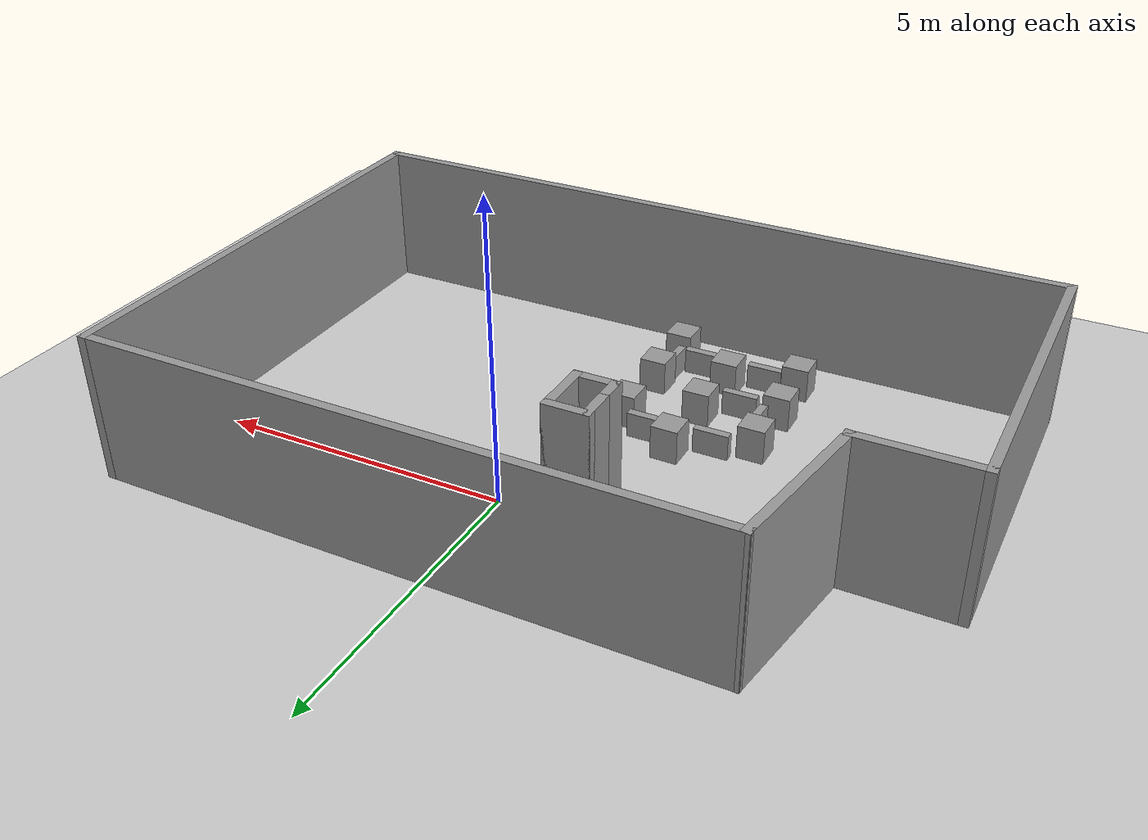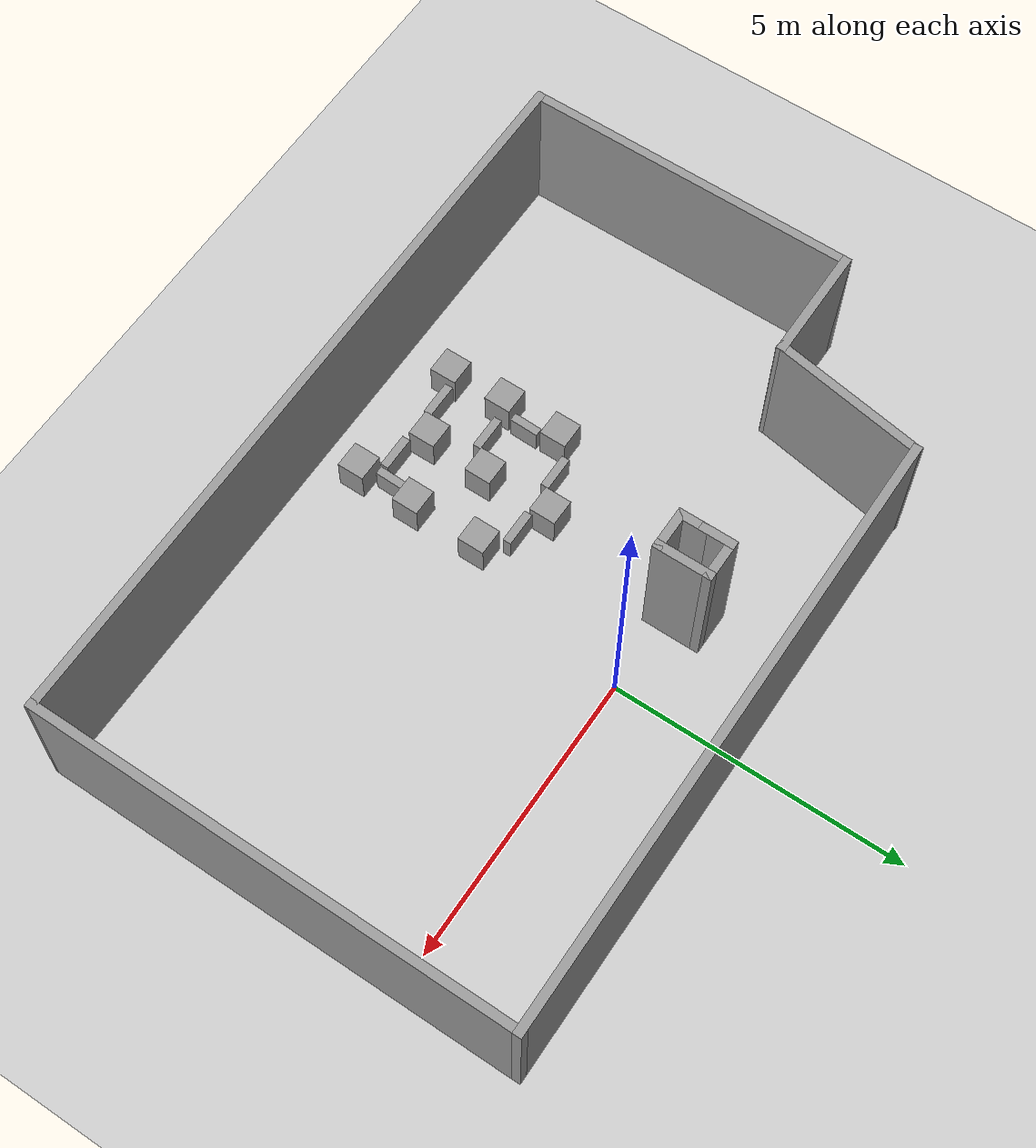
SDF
<sdf version="1.7">
 <world name="lab211_with_boxes_t7_1">
  <light name="sun" type="directional">
   <pose>0 0 10 0 -0 0</pose>
   <diffuse>0.8 0.8 0.8 1</diffuse>
   <specular>0.2 0.2 0.2 1</specular>
   <attenuation>
    <range>1000</range>
    <constant>0.9</constant>
    <linear>0.01</linear>
    <quadratic>0.001</quadratic>
   </attenuation>
   <direction>-0.5 0.1 -0.9</direction>
   <spot><inner_angle>0</inner_angle><outer_angle>0</outer_angle><falloff>0</falloff></spot>
  </light>
  <model name="ground_plane">
   <static>1</static>
   <link name="link">
    <collision name="collision">
     <geometry><plane><normal>0 0 1</normal><size>100 100</size></plane></geometry>
     <surface>
      <contact><collide_bitmask>65535</collide_bitmask></contact>
      <friction><ode><mu>100</mu><mu2>50</mu2></ode></friction>
     </surface>
    </collision>
    <visual name="visual">
     <cast_shadows>0</cast_shadows>
     <geometry><plane><normal>0 0 1</normal><size>100 100</size></plane></geometry>
     <material>
      <script><uri>file://media/materials/scripts/gazebo.material</uri><name>Gazebo/Grey</name></script>
      <ambient>0.9 0.9 0.9 1</ambient>
      <diffuse>0.9 0.9 0.9 1</diffuse>
      <specular>0.9 0.9 0.9 1</specular>
      <emissive>0.4 0.4 0.4 1</emissive>
     </material>
    </visual>
   </link>
  </model>
  <gravity>0 0 -9.8</gravity>
  <magnetic_field>6e-06 2.3e-05 -4.2e-05</magnetic_field>
  <atmosphere type="adiabatic"/>
  <physics type="ode">
   <max_step_size>0.001</max_step_size>
   <real_time_factor>1</real_time_factor>
   <real_time_update_rate>1000</real_time_update_rate>
  </physics>
  <scene><ambient>0.4 0.4 0.4 1</ambient><background>0.7 0.7 0.7 1</background><shadows>1</shadows></scene>
  <audio><device>default</device></audio>
  <spherical_coordinates>
   <surface_model>EARTH_WGS84</surface_model>
   <latitude_deg>0</latitude_deg>
   <longitude_deg>0</longitude_deg>
   <elevation>0</elevation>
   <heading_deg>0</heading_deg>
  </spherical_coordinates>
  <model name="lab211_1">
   <pose>-0.641429 -1.97187 0 0 -0 0</pose>
   <link name="Wall_12">
    <collision name="Wall_12_Collision">
     <geometry><box><size>8.25 0.15 2.5</size></box></geometry>
     <pose>0 0 1.25 0 -0 0</pose>
    </collision>
    <visual name="Wall_12_Visual">
     <pose>0 0 1.25 0 -0 0</pose>
     <geometry><box><size>8.25 0.15 2.5</size></box></geometry>
     <material>
      <script><uri>file://media/materials/scripts/gazebo.material</uri><name>Gazebo/Grey</name></script>
      <ambient>0.9 0.9 0.9 1</ambient>
      <diffuse>0.9 0.9 0.9 1</diffuse>
      <specular>0.9 0.9 0.9 1</specular>
      <emissive>0.4 0.4 0.4 1</emissive>
      <ambient>0.9 0.9 0.9 1</ambient>
      <diffuse>0.9 0.9 0.9 1</diffuse>
      <specular>0.9 0.9 0.9 1</specular>
      <emissive>0.4 0.4 0.4 1</emissive>
     </material>
     <meta><layer>0</layer></meta>
    </visual>
    <pose>6.31146 3.1e-05 0 0 -0 1.5708</pose>
   </link>
   <link name="Wall_13">
    <collision name="Wall_13_Collision">
     <geometry><box><size>10.5 0.15 2.5</size></box></geometry>
     <pose>0 0 1.25 0 -0 0</pose>
    </collision>
    <visual name="Wall_13_Visual">
     <pose>0 0 1.25 0 -0 0</pose>
     <geometry><box><size>10.5 0.15 2.5</size></box></geometry>
     <material>
      <script><uri>file://media/materials/scripts/gazebo.material</uri><name>Gazebo/Grey</name></script>
      <ambient>0.9 0.9 0.9 1</ambient>
      <diffuse>0.9 0.9 0.9 1</diffuse>
      <specular>0.9 0.9 0.9 1</specular>
      <emissive>0.4 0.4 0.4 1</emissive>
     </material>
     <meta><layer>0</layer></meta>
    </visual>
    <pose>1.13646 4.05003 0 0 -0 3.14159</pose>
   </link>
   <link name="Wall_16">
    <collision name="Wall_16_Collision">
     <geometry><box><size>5.75 0.15 2.5</size></box></geometry>
     <pose>0 0 1.25 0 -0 0</pose>
    </collision>
    <visual name="Wall_16_Visual">
     <pose>0 0 1.25 0 -0 0</pose>
     <geometry><box><size>5.75 0.15 2.5</size></box></geometry>
     <material>
      <script><uri>file://media/materials/scripts/gazebo.material</uri><name>Gazebo/Grey</name></script>
      <ambient>0.9 0.9 0.9 1</ambient>
      <diffuse>0.9 0.9 0.9 1</diffuse>
      <specular>0.9 0.9 0.9 1</specular>
      <emissive>0.4 0.4 0.4 1</emissive>
     </material>
     <meta><layer>0</layer></meta>
    </visual>
    <pose>-6.31147 -1.26138 0 0 -0 -1.5708</pose>
   </link>
   <link name="Wall_18">
    <collision name="Wall_18_Collision">
     <geometry><box><size>12.7729 0.15 2.5</size></box></geometry>
     <pose>0 0 1.25 0 -0 0</pose>
    </collision>
    <visual name="Wall_18_Visual">
     <pose>0 0 1.25 0 -0 0</pose>
     <geometry><box><size>12.7729 0.15 2.5</size></box></geometry>
     <material>
      <script><uri>file://media/materials/scripts/gazebo.material</uri><name>Gazebo/Grey</name></script>
      <ambient>0.9 0.9 0.9 1</ambient>
      <diffuse>0.9 0.9 0.9 1</diffuse>
      <specular>0.9 0.9 0.9 1</specular>
      <emissive>0.4 0.4 0.4 1</emissive>
     </material>
     <meta><layer>0</layer></meta>
    </visual>
    <pose>-0 -4.05567 0 0 -0 0.000904</pose>
   </link>
   <link name="Wall_20">
    <collision name="Wall_20_Collision">
     <geometry><box><size>2 0.15 2.5</size></box></geometry>
     <pose>0 0 1.25 0 -0 0</pose>
    </collision>
    <visual name="Wall_20_Visual">
     <pose>0 0 1.25 0 -0 0</pose>
     <geometry><box><size>2 0.15 2.5</size></box></geometry>
     <material>
      <script><uri>file://media/materials/scripts/gazebo.material</uri><name>Gazebo/Grey</name></script>
      <ambient>0.9 0.9 0.9 1</ambient>
      <diffuse>0.9 0.9 0.9 1</diffuse>
      <specular>0.9 0.9 0.9 1</specular>
      <emissive>0.4 0.4 0.4 1</emissive>
     </material>
     <meta><layer>0</layer></meta>
    </visual>
    <pose>-5.38647 1.53862 0 0 -0 0</pose>
   </link>
   <link name="Wall_21">
    <collision name="Wall_21_Collision">
     <geometry><box><size>2.69677 0.15 2.5</size></box></geometry>
     <pose>0 0 1.25 0 -0 0</pose>
    </collision>
    <visual name="Wall_21_Visual">
     <pose>0 0 1.25 0 -0 0</pose>
     <geometry><box><size>2.69677 0.15 2.5</size></box></geometry>
     <material>
      <script><uri>file://media/materials/scripts/gazebo.material</uri><name>Gazebo/Grey</name></script>
      <ambient>0.9 0.9 0.9 1</ambient>
      <diffuse>0.9 0.9 0.9 1</diffuse>
      <specular>0.9 0.9 0.9 1</specular>
      <emissive>0.4 0.4 0.4 1</emissive>
     </material>
     <meta><layer>0</layer></meta>
    </visual>
    <pose>-4.25 2.79433 0 0 -0 1.40396</pose>
   </link>
   <static>1</static>
  </model>
  <model name="lab211_piller">
   <pose>-1.62497 0.232964 0 0 -0 0</pose>
   <link name="Wall_28">
    <collision name="Wall_28_Collision">
     <geometry><box><size>0.5532 0.15 2.5</size></box></geometry>
     <pose>0 0 1.25 0 -0 0</pose>
    </collision>
    <visual name="Wall_28_Visual">
     <pose>0 0 1.25 0 -0 0</pose>
     <geometry><box><size>0.5532 0.15 2.5</size></box></geometry>
     <material>
      <script><uri>file://media/materials/scripts/gazebo.material</uri><name>Gazebo/Grey</name></script>
      <ambient>0.9 0.9 0.9 1</ambient>
      <diffuse>0.9 0.9 0.9 1</diffuse>
      <specular>0.9 0.9 0.9 1</specular>
      <emissive>0.4 0.4 0.4 1</emissive>
     </material>
     <meta><layer>0</layer></meta>
    </visual>
    <pose>-0.227876 -0.2234 0 0 -0 -1.5708</pose>
   </link>
   <link name="Wall_29">
    <collision name="Wall_29_Collision">
     <geometry><box><size>0.75 0.15 2.5</size></box></geometry>
     <pose>0 0 1.25 0 -0 0</pose>
    </collision>
    <visual name="Wall_29_Visual">
     <pose>0 0 1.25 0 -0 0</pose>
     <geometry><box><size>0.75 0.15 2.5</size></box></geometry>
     <material>
      <script><uri>file://media/materials/scripts/gazebo.material</uri><name>Gazebo/Grey</name></script>
      <ambient>0.9 0.9 0.9 1</ambient>
      <diffuse>0.9 0.9 0.9 1</diffuse>
      <specular>0.9 0.9 0.9 1</specular>
      <emissive>0.4 0.4 0.4 1</emissive>
     </material>
     <meta><layer>0</layer></meta>
    </visual>
    <pose>0.072124 -0.425 0 0 -0 0</pose>
   </link>
   <link name="Wall_30">
    <collision name="Wall_30_Collision">
     <geometry><box><size>1 0.15 2.5</size></box></geometry>
     <pose>0 0 1.25 0 -0 0</pose>
    </collision>
    <visual name="Wall_30_Visual">
     <pose>0 0 1.25 0 -0 0</pose>
     <geometry><box><size>1 0.15 2.5</size></box></geometry>
     <material>
      <script><uri>file://media/materials/scripts/gazebo.material</uri><name>Gazebo/Grey</name></script>
      <ambient>0.9 0.9 0.9 1</ambient>
      <diffuse>0.9 0.9 0.9 1</diffuse>
      <specular>0.9 0.9 0.9 1</specular>
      <emissive>0.4 0.4 0.4 1</emissive>
     </material>
     <meta><layer>0</layer></meta>
    </visual>
    <pose>0.372124 -0 0 0 -0 1.5708</pose>
   </link>
   <link name="Wall_31">
    <collision name="Wall_31_Collision">
     <geometry><box><size>0.75 0.15 2.5</size></box></geometry>
     <pose>0 0 1.25 0 -0 0</pose>
    </collision>
    <visual name="Wall_31_Visual">
     <pose>0 0 1.25 0 -0 0</pose>
     <geometry><box><size>0.75 0.15 2.5</size></box></geometry>
     <material>
      <script><uri>file://media/materials/scripts/gazebo.material</uri><name>Gazebo/Grey</name></script>
      <ambient>0.9 0.9 0.9 1</ambient>
      <diffuse>0.9 0.9 0.9 1</diffuse>
      <specular>0.9 0.9 0.9 1</specular>
      <emissive>0.4 0.4 0.4 1</emissive>
     </material>
     <meta><layer>0</layer></meta>
    </visual>
    <pose>0.072124 0.425 0 0 -0 3.14159</pose>
   </link>
   <link name="Wall_32">
    <collision name="Wall_32_Collision">
     <geometry><box><size>0.5968 0.15 2.5</size></box></geometry>
     <pose>0 0 1.25 0 -0 0</pose>
    </collision>
    <visual name="Wall_32_Visual">
     <pose>0 0 1.25 0 -0 0</pose>
     <geometry><box><size>0.5968 0.15 2.5</size></box></geometry>
     <material>
      <script><uri>file://media/materials/scripts/gazebo.material</uri><name>Gazebo/Grey</name></script>
      <ambient>0.9 0.9 0.9 1</ambient>
      <diffuse>0.9 0.9 0.9 1</diffuse>
      <specular>0.9 0.9 0.9 1</specular>
      <emissive>0.4 0.4 0.4 1</emissive>
     </material>
     <meta><layer>0</layer></meta>
    </visual>
    <pose>-0.227876 0.2016 0 0 -0 -1.5708</pose>
   </link>
   <static>1</static>
  </model>
  <model name="unit_box_clone">
   <pose>-3.02205 -4.03785 0.294122 0 0 -0.002878</pose>
   <link name="link">
    <inertial>
     <mass>1</mass>
     <inertia>
      <ixx>0.166667</ixx>
      <ixy>0</ixy>
      <ixz>0</ixz>
      <iyy>0.166667</iyy>
      <iyz>0</iyz>
      <izz>0.166667</izz>
     </inertia>
    </inertial>
    <collision name="collision"><geometry><box><size>0.460991 0.46303 0.588244</size></box></geometry></collision>
    <visual name="visual">
     <geometry><box><size>0.460991 0.46303 0.588244</size></box></geometry>
     <material>
      <script><name>Gazebo/Grey</name><uri>file://media/materials/scripts/gazebo.material</uri></script>
     </material>
    </visual>
   </link>
  </model>
  <model name="unit_box_clone_0">
   <pose>-2.98154 -5.04818 0.294122 0 -0 0.005357</pose>
   <link name="link">
    <inertial>
     <mass>1</mass>
     <inertia>
      <ixx>0.166667</ixx>
      <ixy>0</ixy>
      <ixz>0</ixz>
      <iyy>0.166667</iyy>
      <iyz>0</iyz>
      <izz>0.166667</izz>
     </inertia>
    </inertial>
    <collision name="collision"><geometry><box><size>0.460991 0.46303 0.588244</size></box></geometry></collision>
    <visual name="visual">
     <geometry><box><size>0.460991 0.46303 0.588244</size></box></geometry>
     <material>
      <script><name>Gazebo/Grey</name><uri>file://media/materials/scripts/gazebo.material</uri></script>
     </material>
    </visual>
   </link>
  </model>
  <model name="unit_box_clone_1">
   <pose>-1.7936 -3.57402 0.294122 0 -0 4e-06</pose>
   <link name="link">
    <inertial>
     <mass>1</mass>
     <inertia>
      <ixx>0.166667</ixx>
      <ixy>0</ixy>
      <ixz>0</ixz>
      <iyy>0.166667</iyy>
      <iyz>0</iyz>
      <izz>0.166667</izz>
     </inertia>
    </inertial>
    <collision name="collision"><geometry><box><size>0.460991 0.46303 0.588244</size></box></geometry></collision>
    <visual name="visual">
     <geometry><box><size>0.460991 0.46303 0.588244</size></box></geometry>
     <material>
      <script><name>Gazebo/Grey</name><uri>file://media/materials/scripts/gazebo.material</uri></script>
     </material>
    </visual>
   </link>
  </model>
  <model name="unit_box_clone_2">
   <pose>-1.84249 -4.66509 0.294122 0 -0 4e-06</pose>
   <link name="link">
    <inertial>
     <mass>1</mass>
     <inertia>
      <ixx>0.166667</ixx>
      <ixy>0</ixy>
      <ixz>0</ixz>
      <iyy>0.166667</iyy>
      <iyz>0</iyz>
      <izz>0.166667</izz>
     </inertia>
    </inertial>
    <collision name="collision"><geometry><box><size>0.460991 0.46303 0.588244</size></box></geometry></collision>
    <visual name="visual">
     <geometry><box><size>0.460991 0.46303 0.588244</size></box></geometry>
     <material>
      <script><name>Gazebo/Grey</name><uri>file://media/materials/scripts/gazebo.material</uri></script>
     </material>
    </visual>
   </link>
  </model>
  <model name="unit_box_clone_3">
   <pose>-1.77452 -2.35412 0.294122 0 -0 -0.007167</pose>
   <link name="link">
    <inertial>
     <mass>1</mass>
     <inertia>
      <ixx>0.166667</ixx>
      <ixy>0</ixy>
      <ixz>0</ixz>
      <iyy>0.166667</iyy>
      <iyz>0</iyz>
      <izz>0.166667</izz>
     </inertia>
    </inertial>
    <collision name="collision"><geometry><box><size>0.460991 0.46303 0.588244</size></box></geometry></collision>
    <visual name="visual">
     <geometry><box><size>0.460991 0.46303 0.588244</size></box></geometry>
     <material>
      <script><name>Gazebo/Grey</name><uri>file://media/materials/scripts/gazebo.material</uri></script>
     </material>
    </visual>
   </link>
  </model>
  <model name="unit_box_clone_4">
   <pose>-0.735079 -4.20388 0.294122 0 -0 4e-06</pose>
   <link name="link">
    <inertial>
     <mass>1</mass>
     <inertia>
      <ixx>0.166667</ixx>
      <ixy>0</ixy>
      <ixz>0</ixz>
      <iyy>0.166667</iyy>
      <iyz>0</iyz>
      <izz>0.166667</izz>
     </inertia>
    </inertial>
    <collision name="collision"><geometry><box><size>0.460991 0.46303 0.588244</size></box></geometry></collision>
    <visual name="visual">
     <geometry><box><size>0.460991 0.46303 0.588244</size></box></geometry>
     <material>
      <script><name>Gazebo/Grey</name><uri>file://media/materials/scripts/gazebo.material</uri></script>
     </material>
    </visual>
   </link>
  </model>
  <model name="unit_box_clone_5">
   <pose>-0.740032 -2.97629 0.294122 0 -0 4e-06</pose>
   <link name="link">
    <inertial>
     <mass>1</mass>
     <inertia>
      <ixx>0.166667</ixx>
      <ixy>0</ixy>
      <ixz>0</ixz>
      <iyy>0.166667</iyy>
      <iyz>0</iyz>
      <izz>0.166667</izz>
     </inertia>
    </inertial>
    <collision name="collision"><geometry><box><size>0.460991 0.46303 0.588244</size></box></geometry></collision>
    <visual name="visual">
     <geometry><box><size>0.460991 0.46303 0.588244</size></box></geometry>
     <material>
      <script><name>Gazebo/Grey</name><uri>file://media/materials/scripts/gazebo.material</uri></script>
     </material>
    </visual>
   </link>
  </model>
  <model name="unit_box_clone_6">
   <pose>-0.759525 -5.24701 0.294122 0 -0 4e-06</pose>
   <link name="link">
    <inertial>
     <mass>1</mass>
     <inertia>
      <ixx>0.166667</ixx>
      <ixy>0</ixy>
      <ixz>0</ixz>
      <iyy>0.166667</iyy>
      <iyz>0</iyz>
      <izz>0.166667</izz>
     </inertia>
    </inertial>
    <collision name="collision"><geometry><box><size>0.460991 0.46303 0.588244</size></box></geometry></collision>
    <visual name="visual">
     <geometry><box><size>0.460991 0.46303 0.588244</size></box></geometry>
     <material>
      <script><name>Gazebo/Grey</name><uri>file://media/materials/scripts/gazebo.material</uri></script>
     </material>
    </visual>
   </link>
  </model>
  <model name="unit_box_clone_clone">
   <pose>-2.99337 -2.96914 0.294122 0 0 -0.002878</pose>
   <link name="link">
    <inertial>
     <mass>1</mass>
     <inertia>
      <ixx>0.166667</ixx>
      <ixy>0</ixy>
      <ixz>0</ixz>
      <iyy>0.166667</iyy>
      <iyz>0</iyz>
      <izz>0.166667</izz>
     </inertia>
    </inertial>
    <collision name="collision"><geometry><box><size>0.460991 0.46303 0.588244</size></box></geometry></collision>
    <visual name="visual">
     <geometry><box><size>0.460991 0.46303 0.588244</size></box></geometry>
     <material>
      <script><name>Gazebo/Grey</name><uri>file://media/materials/scripts/gazebo.material</uri></script>
     </material>
    </visual>
   </link>
  </model>
  <model name="unit_box_clone_7">
   <pose>-2.43334 -4.91268 0.217662 -1.7e-05 -0 0.005231</pose>
   <link name="link">
    <inertial>
     <mass>1</mass>
     <inertia>
      <ixx>0.166667</ixx>
      <ixy>0</ixy>
      <ixz>0</ixz>
      <iyy>0.166667</iyy>
      <iyz>0</iyz>
      <izz>0.166667</izz>
     </inertia>
    </inertial>
    <collision name="collision">
     <geometry><box><size>0.600401 0.140773 0.435321</size></box></geometry>
    </collision>
    <visual name="visual">
     <geometry><box><size>0.600401 0.140773 0.435321</size></box></geometry>
     <material>
      <script><name>Gazebo/Grey</name><uri>file://media/materials/scripts/gazebo.material</uri></script>
     </material>
    </visual>
   </link>
  </model>
  <model name="unit_box_clone_7_clone">
   <pose>-1.27303 -4.9221 0.21766 2e-06 -0 0.005293</pose>
   <link name="link">
    <inertial>
     <mass>1</mass>
     <inertia>
      <ixx>0.166667</ixx>
      <ixy>0</ixy>
      <ixz>0</ixz>
      <iyy>0.166667</iyy>
      <iyz>0</iyz>
      <izz>0.166667</izz>
     </inertia>
    </inertial>
    <collision name="collision">
     <geometry><box><size>0.600401 0.140773 0.435321</size></box></geometry>
    </collision>
    <visual name="visual">
     <geometry><box><size>0.600401 0.140773 0.435321</size></box></geometry>
     <material>
      <script><name>Gazebo/Grey</name><uri>file://media/materials/scripts/gazebo.material</uri></script>
     </material>
    </visual>
   </link>
  </model>
  <model name="unit_box_clone_7_clone_0">
   <pose>-2.37711 -2.65628 0.21766 -2e-06 -0 0.005253</pose>
   <link name="link">
    <inertial>
     <mass>1</mass>
     <inertia>
      <ixx>0.166667</ixx>
      <ixy>0</ixy>
      <ixz>0</ixz>
      <iyy>0.166667</iyy>
      <iyz>0</iyz>
      <izz>0.166667</izz>
     </inertia>
    </inertial>
    <collision name="collision">
     <geometry><box><size>0.600401 0.140773 0.435321</size></box></geometry>
    </collision>
    <visual name="visual">
     <geometry><box><size>0.600401 0.140773 0.435321</size></box></geometry>
     <material>
      <script><name>Gazebo/Grey</name><uri>file://media/materials/scripts/gazebo.material</uri></script>
     </material>
    </visual>
   </link>
  </model>
  <model name="unit_box_clone_7_clone_1">
   <pose>-1.24461 -2.60043 0.217661 -1e-05 0 0.003758</pose>
   <link name="link">
    <inertial>
     <mass>1</mass>
     <inertia>
      <ixx>0.166667</ixx>
      <ixy>0</ixy>
      <ixz>0</ixz>
      <iyy>0.166667</iyy>
      <iyz>0</iyz>
      <izz>0.166667</izz>
     </inertia>
    </inertial>
    <collision name="collision">
     <geometry><box><size>0.600401 0.140773 0.435321</size></box></geometry>
    </collision>
    <visual name="visual">
     <geometry><box><size>0.600401 0.140773 0.435321</size></box></geometry>
     <material>
      <script><name>Gazebo/Grey</name><uri>file://media/materials/scripts/gazebo.material</uri></script>
     </material>
    </visual>
   </link>
  </model>
  <model name="unit_box_clone_7_clone_0_clone_clone">
   <pose>-0.86371 -4.70501 0.217658 -2e-06 -9e-06 -1.5954</pose>
   <link name="link">
    <inertial>
     <mass>1</mass>
     <inertia>
      <ixx>0.166667</ixx>
      <ixy>0</ixy>
      <ixz>0</ixz>
      <iyy>0.166667</iyy>
      <iyz>0</iyz>
      <izz>0.166667</izz>
     </inertia>
    </inertial>
    <collision name="collision">
     <geometry><box><size>0.495619 0.140773 0.435321</size></box></geometry>
    </collision>
    <visual name="visual">
     <geometry><box><size>0.495619 0.140773 0.435321</size></box></geometry>
     <material>
      <script><name>Gazebo/Grey</name><uri>file://media/materials/scripts/gazebo.material</uri></script>
     </material>
    </visual>
   </link>
  </model>
  <model name="unit_box_clone_7_clone_0_clone">
   <pose>-2.36766 -3.92693 0.217662 2.3e-05 -0 0.005254</pose>
   <link name="link">
    <inertial>
     <mass>1</mass>
     <inertia>
      <ixx>0.166667</ixx>
      <ixy>0</ixy>
      <ixz>0</ixz>
      <iyy>0.166667</iyy>
      <iyz>0</iyz>
      <izz>0.166667</izz>
     </inertia>
    </inertial>
    <collision name="collision">
     <geometry><box><size>0.600401 0.140773 0.435321</size></box></geometry>
    </collision>
    <visual name="visual">
     <geometry><box><size>0.600401 0.140773 0.435321</size></box></geometry>
     <material>
      <script><name>Gazebo/Grey</name><uri>file://media/materials/scripts/gazebo.material</uri></script>
     </material>
    </visual>
   </link>
  </model>
  <model name="unit_box_clone_7_clone_0_clone_clone_clone">
   <pose>-2.83167 -3.50848 0.217662 1e-06 -5e-06 -1.5953</pose>
   <link name="link">
    <inertial>
     <mass>1</mass>
     <inertia>
      <ixx>0.166667</ixx>
      <ixy>0</ixy>
      <ixz>0</ixz>
      <iyy>0.166667</iyy>
      <iyz>0</iyz>
      <izz>0.166667</izz>
     </inertia>
    </inertial>
    <collision name="collision">
     <geometry><box><size>0.495619 0.140773 0.435321</size></box></geometry>
    </collision>
    <visual name="visual">
     <geometry><box><size>0.495619 0.140773 0.435321</size></box></geometry>
     <material>
      <script><name>Gazebo/Grey</name><uri>file://media/materials/scripts/gazebo.material</uri></script>
     </material>
    </visual>
   </link>
  </model>
 </world>
</sdf>
